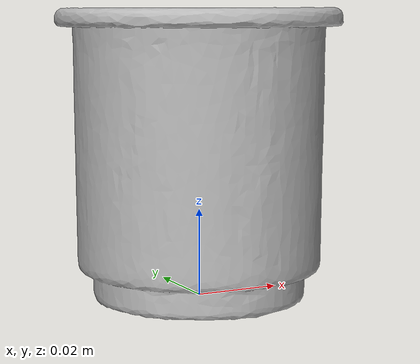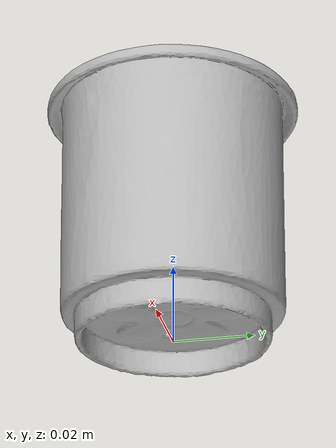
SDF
<?xml version="1.0" ?>
<sdf version='1.8'>
  <model name='ycb_065-c_cups'>
    <link name='body'>
      <inertial>
        <mass>0.031</mass>
        <pose>0.000868025235 0.00270614302 0.0313471563 0 0 0</pose>
        <inertia>
          <ixx>2.28046858771e-05</ixx>
          <ixy>-8.40703672051e-08</ixy>
          <ixz>7.88860702255e-08</ixz>
          <iyy>2.20279766942e-05</iyy>
          <iyz>7.40173292932e-07</iyz>
          <izz>2.07972936275e-05</izz>
        </inertia>
      </inertial>
      <visual name='ycb_065-c_cups_visual'>
        <pose>0.015343 0.067323 0.000185 0 0 0</pose>
        <geometry>
          <mesh>
            <uri>model://ycb_065-c_cups/meshes/textured.dae</uri>
          </mesh>
        </geometry>
      </visual>
      <collision name='ycb_065-c_cups_collision'>
        <pose>0.015343 0.067323 0.000185 0 0 0</pose>
        <geometry>
          <mesh>
            <uri>model://ycb_065-c_cups/meshes/nontextured.stl</uri>
          </mesh>
        </geometry>
        <max_contacts>10</max_contacts>
        <surface>
          <contact>
            <ode>
              <kp>1e15</kp>
              <kd>1e13</kd>
            </ode>
          </contact>
        </surface>
      </collision>
    </link>
  </model>
</sdf>
